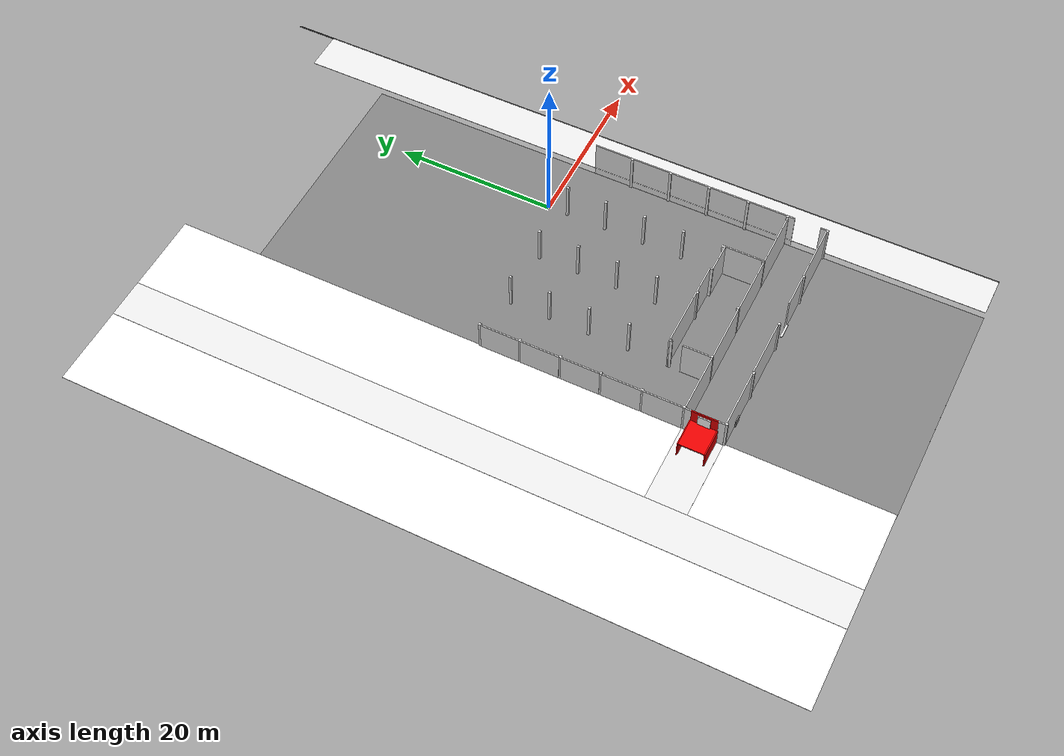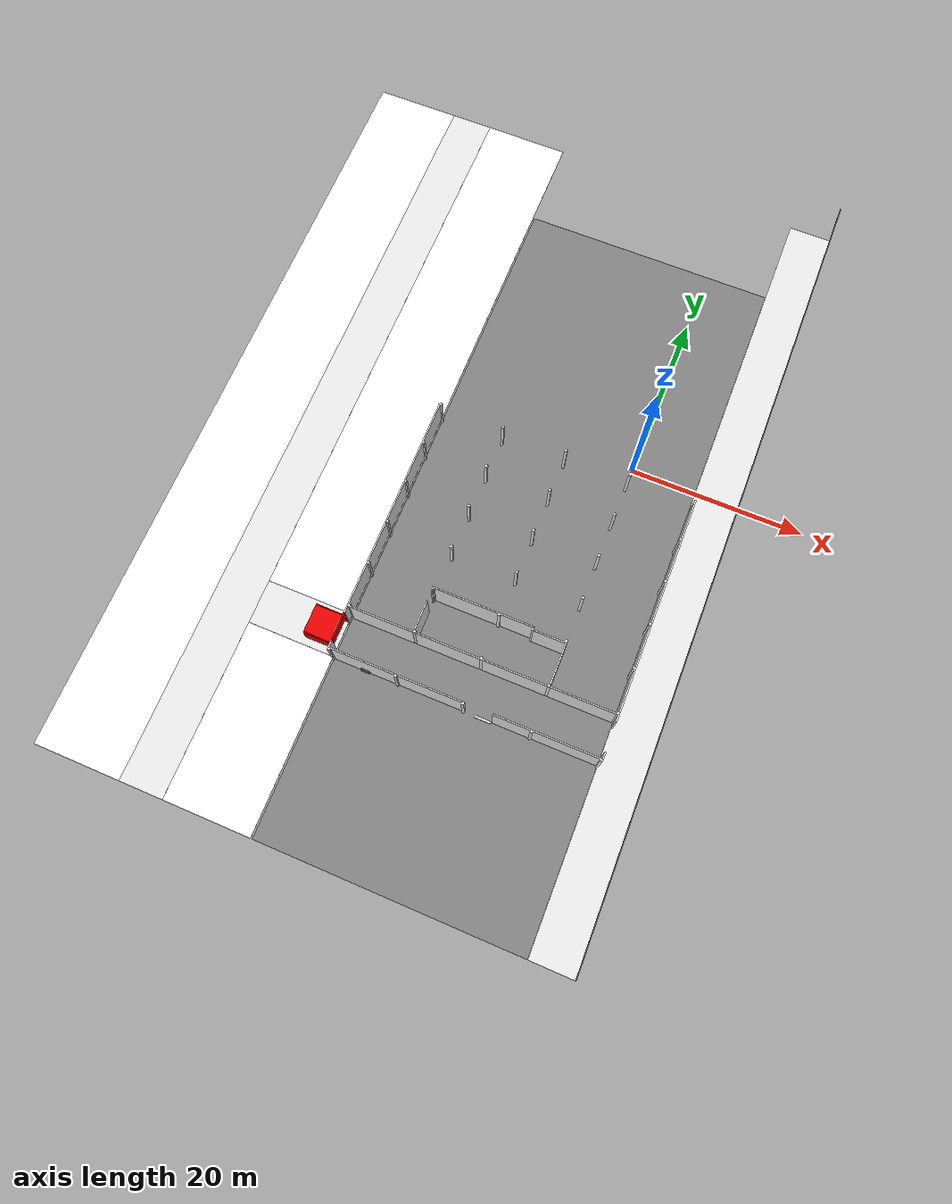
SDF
<sdf version="1.7">
 <model name="TYwalls">
  <pose>0 0 2.5 0 0 0</pose>
  <link name="Wall_RE1">
   <pose>-18.75 -27.6 0 0 0 0</pose>
   <collision name="Wall_RE1_Collision"><geometry><box><size>7.2 0.15 5</size></box></geometry></collision>
   <visual name="Wall_RE1_Visual">
    <geometry><box><size>7.2 0.15 5</size></box></geometry>
    <material>
     <ambient>0.9 0.9 0.9 1</ambient>
     <diffuse>0.9 0.9 0.9 1</diffuse>
     <specular>0.9 0.9 0.9 1</specular>
    </material>
    <meta><layer>0</layer></meta>
   </visual>
  </link>
  <link name="Wall_RE2">
   <pose>-11.25 -27.6 0 0 0 0</pose>
   <collision name="Wall_RE2_Collision"><geometry><box><size>7.2 0.15 5</size></box></geometry></collision>
   <visual name="Wall_RE2_Visual">
    <geometry><box><size>7.2 0.15 5</size></box></geometry>
    <material>
     <ambient>0.9 0.9 0.9 1</ambient>
     <diffuse>0.9 0.9 0.9 1</diffuse>
     <specular>0.9 0.9 0.9 1</specular>
    </material>
    <meta><layer>0</layer></meta>
   </visual>
  </link>
  <link name="Wall_RE3">
   <pose>-3.75 -27.6 0 0 0 0</pose>
   <collision name="Wall_RE3_Collision"><geometry><box><size>7.2 0.15 5</size></box></geometry></collision>
   <visual name="Wall_RE3_Visual">
    <geometry><box><size>7.2 0.15 5</size></box></geometry>
    <material>
     <ambient>0.9 0.9 0.9 1</ambient>
     <diffuse>0.9 0.9 0.9 1</diffuse>
     <specular>0.9 0.9 0.9 1</specular>
    </material>
    <meta><layer>0</layer></meta>
   </visual>
  </link>
  <link name="Wall_RE4">
   <pose>3.75 -27.6 0 0 0 0</pose>
   <collision name="Wall_RE4_Collision"><geometry><box><size>7.2 0.15 5</size></box></geometry></collision>
   <visual name="Wall_RE4_Visual">
    <geometry><box><size>7.2 0.15 5</size></box></geometry>
    <material>
     <ambient>0.9 0.9 0.9 1</ambient>
     <diffuse>0.9 0.9 0.9 1</diffuse>
     <specular>0.9 0.9 0.9 1</specular>
    </material>
    <meta><layer>0</layer></meta>
   </visual>
  </link>
  <link name="Wall_S7">
   <pose>7.6 -5.0 0 0 0 1.5707</pose>
   <collision name="Wall_S7_Collision"><geometry><box><size>4.8 0.15 5</size></box></geometry></collision>
   <visual name="Wall_S7_Visual">
    <geometry><box><size>4.8 0.15 5</size></box></geometry>
    <material>
     <ambient>0.9 0.9 0.9 1</ambient>
     <diffuse>0.9 0.9 0.9 1</diffuse>
     <specular>0.9 0.9 0.9 1</specular>
    </material>
    <meta><layer>0</layer></meta>
   </visual>
  </link>
  <link name="Wall_S8">
   <pose>7.6 -10.0 0 0 0 1.5707</pose>
   <collision name="Wall_S8_Collision"><geometry><box><size>4.8 0.15 5</size></box></geometry></collision>
   <visual name="Wall_S8_Visual">
    <geometry><box><size>4.8 0.15 5</size></box></geometry>
    <material>
     <ambient>0.9 0.9 0.9 1</ambient>
     <diffuse>0.9 0.9 0.9 1</diffuse>
     <specular>0.9 0.9 0.9 1</specular>
    </material>
    <meta><layer>0</layer></meta>
   </visual>
  </link>
  <link name="Wall_S9">
   <pose>7.6 -15.0 0 0 0 1.5707</pose>
   <collision name="Wall_S9_Collision"><geometry><box><size>4.8 0.15 5</size></box></geometry></collision>
   <visual name="Wall_S9_Visual">
    <geometry><box><size>4.8 0.15 5</size></box></geometry>
    <material>
     <ambient>0.9 0.9 0.9 1</ambient>
     <diffuse>0.9 0.9 0.9 1</diffuse>
     <specular>0.9 0.9 0.9 1</specular>
    </material>
    <meta><layer>0</layer></meta>
   </visual>
  </link>
  <link name="Wall_S10">
   <pose>7.6 -20.0 0 0 0 1.5707</pose>
   <collision name="Wall_S10_Collision"><geometry><box><size>4.8 0.15 5</size></box></geometry></collision>
   <visual name="Wall_S10_Visual">
    <geometry><box><size>4.8 0.15 5</size></box></geometry>
    <material>
     <ambient>0.9 0.9 0.9 1</ambient>
     <diffuse>0.9 0.9 0.9 1</diffuse>
     <specular>0.9 0.9 0.9 1</specular>
    </material>
    <meta><layer>0</layer></meta>
   </visual>
  </link>
  <link name="Wall_S11">
   <pose>7.6 -25.0 0 0 0 1.5707</pose>
   <collision name="Wall_S11_Collision"><geometry><box><size>4.8 0.15 5</size></box></geometry></collision>
   <visual name="Wall_S11_Visual">
    <geometry><box><size>4.8 0.15 5</size></box></geometry>
    <material>
     <ambient>0.9 0.9 0.9 1</ambient>
     <diffuse>0.9 0.9 0.9 1</diffuse>
     <specular>0.9 0.9 0.9 1</specular>
    </material>
    <meta><layer>0</layer></meta>
   </visual>
  </link>
  <link name="Wall_S12a">
   <pose>7.6 -28.0 0 0 0 1.5707</pose>
   <collision name="Wall_S12a_Collision"><geometry><box><size>0.8 0.15 5</size></box></geometry></collision>
   <visual name="Wall_S12a_Visual">
    <geometry><box><size>0.8 0.15 5</size></box></geometry>
    <material>
     <ambient>0.9 0.9 0.9 1</ambient>
     <diffuse>0.9 0.9 0.9 1</diffuse>
     <specular>0.9 0.9 0.9 1</specular>
    </material>
    <meta><layer>0</layer></meta>
   </visual>
  </link>
  <link name="Wall_S12b">
   <pose>7.6 -32.0 0 0 0 1.5707</pose>
   <collision name="Wall_S12b_Collision"><geometry><box><size>0.8 0.15 5</size></box></geometry></collision>
   <visual name="Wall_S12b_Visual">
    <geometry><box><size>0.8 0.15 5</size></box></geometry>
    <material>
     <ambient>0.9 0.9 0.9 1</ambient>
     <diffuse>0.9 0.9 0.9 1</diffuse>
     <specular>0.9 0.9 0.9 1</specular>
    </material>
    <meta><layer>0</layer></meta>
   </visual>
  </link>
  <link name="Wall_N7">
   <pose>-22.6 -5.0 0 0 0 1.5707</pose>
   <collision name="Wall_N7_Collision"><geometry><box><size>4.8 0.15 5</size></box></geometry></collision>
   <visual name="Wall_N7_Visual">
    <geometry><box><size>4.8 0.15 5</size></box></geometry>
    <material>
     <ambient>0.9 0.9 0.9 1</ambient>
     <diffuse>0.9 0.9 0.9 1</diffuse>
     <specular>0.9 0.9 0.9 1</specular>
    </material>
    <meta><layer>0</layer></meta>
   </visual>
  </link>
  <link name="Wall_N8">
   <pose>-22.6 -10.0 0 0 0 1.5707</pose>
   <collision name="Wall_N8_Collision"><geometry><box><size>4.8 0.15 5</size></box></geometry></collision>
   <visual name="Wall_N8_Visual">
    <geometry><box><size>4.8 0.15 5</size></box></geometry>
    <material>
     <ambient>0.9 0.9 0.9 1</ambient>
     <diffuse>0.9 0.9 0.9 1</diffuse>
     <specular>0.9 0.9 0.9 1</specular>
    </material>
    <meta><layer>0</layer></meta>
   </visual>
  </link>
  <link name="Wall_N9">
   <pose>-22.6 -15.0 0 0 0 1.5707</pose>
   <collision name="Wall_N9_Collision"><geometry><box><size>4.8 0.15 5</size></box></geometry></collision>
   <visual name="Wall_N9_Visual">
    <geometry><box><size>4.8 0.15 5</size></box></geometry>
    <material>
     <ambient>0.9 0.9 0.9 1</ambient>
     <diffuse>0.9 0.9 0.9 1</diffuse>
     <specular>0.9 0.9 0.9 1</specular>
    </material>
    <meta><layer>0</layer></meta>
   </visual>
  </link>
  <link name="Wall_N10">
   <pose>-22.6 -20.0 0 0 0 1.5707</pose>
   <collision name="Wall_N10_Collision"><geometry><box><size>4.8 0.15 5</size></box></geometry></collision>
   <visual name="Wall_N10_Visual">
    <geometry><box><size>4.8 0.15 5</size></box></geometry>
    <material>
     <ambient>0.9 0.9 0.9 1</ambient>
     <diffuse>0.9 0.9 0.9 1</diffuse>
     <specular>0.9 0.9 0.9 1</specular>
    </material>
    <meta><layer>0</layer></meta>
   </visual>
  </link>
  <link name="Wall_N11">
   <pose>-22.6 -25.0 0 0 0 1.5707</pose>
   <collision name="Wall_N11_Collision"><geometry><box><size>4.8 0.15 5</size></box></geometry></collision>
   <visual name="Wall_N11_Visual">
    <geometry><box><size>4.8 0.15 5</size></box></geometry>
    <material>
     <ambient>0.9 0.9 0.9 1</ambient>
     <diffuse>0.9 0.9 0.9 1</diffuse>
     <specular>0.9 0.9 0.9 1</specular>
    </material>
    <meta><layer>0</layer></meta>
   </visual>
  </link>
  <link name="Wall_N12a">
   <pose>-22.6 -28.0 0 0 0 1.5707</pose>
   <collision name="Wall_N12a_Collision"><geometry><box><size>0.8 0.15 5</size></box></geometry></collision>
   <visual name="Wall_N12_Visual">
    <geometry><box><size>0.8 0.15 5</size></box></geometry>
    <material>
     <ambient>0.9 0.9 0.9 1</ambient>
     <diffuse>0.9 0.9 0.9 1</diffuse>
     <specular>0.9 0.9 0.9 1</specular>
    </material>
    <meta><layer>0</layer></meta>
   </visual>
  </link>
  <link name="Wall_N12b">
   <pose>-22.6 -32.0 0 0 0 1.5707</pose>
   <collision name="Wall_N12b_Collision"><geometry><box><size>0.8 0.15 5</size></box></geometry></collision>
   <visual name="Wall_N12_Visual">
    <geometry><box><size>0.8 0.15 5</size></box></geometry>
    <material>
     <ambient>0.9 0.9 0.9 1</ambient>
     <diffuse>0.9 0.9 0.9 1</diffuse>
     <specular>0.9 0.9 0.9 1</specular>
    </material>
    <meta><layer>0</layer></meta>
   </visual>
  </link>
  <link name="Wall_RW1">
   <pose>-18.75 -32.4 0 0 0 0</pose>
   <collision name="Wall_RW1_Collision"><geometry><box><size>7.2 0.15 5</size></box></geometry></collision>
   <visual name="Wall_RW1_Visual">
    <geometry><box><size>7.2 0.15 5</size></box></geometry>
    <material>
     <ambient>0.9 0.9 0.9 1</ambient>
     <diffuse>0.9 0.9 0.9 1</diffuse>
     <specular>0.9 0.9 0.9 1</specular>
    </material>
    <meta><layer>0</layer></meta>
   </visual>
  </link>
  <link name="Wall_RW2">
   <pose>-11.25 -32.4 0 0 0 0</pose>
   <collision name="Wall_RW2_Collision"><geometry><box><size>7.2 0.15 5</size></box></geometry></collision>
   <visual name="Wall_RW2_Visual">
    <geometry><box><size>7.2 0.15 5</size></box></geometry>
    <material>
     <ambient>0.9 0.9 0.9 1</ambient>
     <diffuse>0.9 0.9 0.9 1</diffuse>
     <specular>0.9 0.9 0.9 1</specular>
    </material>
    <meta><layer>0</layer></meta>
   </visual>
  </link>
  <link name="Wall_RW3">
   <pose>-2.175 -32.4 0 0 0 0</pose>
   <collision name="Wall_RW3_Collision"><geometry><box><size>4.2 0.15 5</size></box></geometry></collision>
   <visual name="Wall_W3_Visual">
    <geometry><box><size>4.2 0.15 5</size></box></geometry>
    <material>
     <ambient>0.9 0.9 0.9 1</ambient>
     <diffuse>0.9 0.9 0.9 1</diffuse>
     <specular>0.9 0.9 0.9 1</specular>
    </material>
    <meta><layer>0</layer></meta>
   </visual>
  </link>
  <link name="Wall_RW4">
   <pose>3.75 -32.4 0 0 0 0</pose>
   <collision name="Wall_RW4_Collision"><geometry><box><size>7.2 0.15 5</size></box></geometry></collision>
   <visual name="Wall_RW4_Visual">
    <geometry><box><size>7.2 0.15 5</size></box></geometry>
    <material>
     <ambient>0.9 0.9 0.9 1</ambient>
     <diffuse>0.9 0.9 0.9 1</diffuse>
     <specular>0.9 0.9 0.9 1</specular>
    </material>
    <meta><layer>0</layer></meta>
   </visual>
  </link>
  <link name="Wall_Entrance_1">
   <pose>-24.35 -28.4 -0.5 0 0 0</pose>
   <collision name="Wall_Entrance_1_Collision">
    <geometry><box><size>3.5 0.15 2.5</size></box></geometry>
   </collision>
   <visual name="Wall_Entrance_1_Visual">
    <geometry><box><size>3.5 0.15 2.5</size></box></geometry>
    <material>
     <ambient>0.9 0.0 0.0 1</ambient>
     <diffuse>0.9 0.0 0.0 1</diffuse>
     <specular>0.9 0.1 0.1 1</specular>
    </material>
    <meta><layer>0</layer></meta>
   </visual>
  </link>
  <link name="Wall_Entrance_2">
   <pose>-24.35 -31.6 -0.5 0 0 0</pose>
   <collision name="Wall_Entrance_2_Collision">
    <geometry><box><size>3.5 0.15 2.5</size></box></geometry>
   </collision>
   <visual name="Wall_Entrance_2_Visual">
    <geometry><box><size>3.5 0.15 2.5</size></box></geometry>
    <material>
     <ambient>0.9 0.0 0.0 1</ambient>
     <diffuse>0.9 0.0 0.0 1</diffuse>
     <specular>0.9 0.1 0.1 1</specular>
    </material>
    <meta><layer>0</layer></meta>
   </visual>
  </link>
  <link name="Wall_Entrance_3">
   <pose>-24.35 -30.0 0.675 0 0 0</pose>
   <collision name="Wall_Entrance_3_Collision">
    <geometry><box><size>3.5 3.15 0.15</size></box></geometry>
   </collision>
   <visual name="Wall_Entrance_3_Visual">
    <geometry><box><size>3.5 3.15 0.15</size></box></geometry>
    <material>
     <ambient>0.9 0.0 0.0 1</ambient>
     <diffuse>0.9 0.0 0.0 1</diffuse>
     <specular>0.9 0.1 0.1 1</specular>
    </material>
    <meta><layer>0</layer></meta>
   </visual>
  </link>
  <link name="Wall_Entrance_4">
   <pose>-22.6 -30.0 1.6 0 0 1.57</pose>
   <collision name="Wall_Entrance_4_Collision">
    <geometry><box><size>3.2 0.15 1.8</size></box></geometry>
   </collision>
   <visual name="Wall_Entrance_4_Visual">
    <geometry><box><size>3.2 0.15 1.8</size></box></geometry>
    <material>
     <ambient>0.9 0.0 0.0 1</ambient>
     <diffuse>0.9 0.0 0.0 1</diffuse>
     <specular>0.9 0.1 0.1 1</specular>
    </material>
    <meta><layer>0</layer></meta>
   </visual>
  </link>
  <link name="Wall_Entrance_5">
   <pose>-22.75 -30.0 1.4 0 0 1.57</pose>
   <collision name="Wall_Entrance_5_Collision">
    <geometry><box><size>1.5 0.15 1.5</size></box></geometry>
   </collision>
   <visual name="Wall_Entrance_5_Visual">
    <geometry><box><size>1.5 0.15 1.5</size></box></geometry>
    <material>
     <diffuse>1.0 1.0 1.0</diffuse>
     <specular>1.0 1.0 1.0</specular>
     <pbr>
      <metal>
       <albedo_map>model://avular_logo/materials/textures/avular_logo.png</albedo_map>
       <normal_map>model://avular_logo/materials/textures/avular_logo.png</normal_map>
      </metal>
     </pbr>
    </material>
    <meta><layer>0</layer></meta>
   </visual>
  </link>
  <link name="Wall_I01">
   <pose>-15.075 -25.7 0 0 0 1.5707</pose>
   <collision name="Wall_I01_Collision"><geometry><box><size>3.4 0.15 5</size></box></geometry></collision>
   <visual name="Wall_I01_Visual">
    <geometry><box><size>3.4 0.15 5</size></box></geometry>
    <material>
     <ambient>0.9 0.9 0.9 1</ambient>
     <diffuse>0.9 0.9 0.9 1</diffuse>
     <specular>0.9 0.9 0.9 1</specular>
    </material>
    <meta><layer>0</layer></meta>
   </visual>
  </link>
  <link name="Wall_I02">
   <pose>-15.075 -22.6 0 0 0 1.5707</pose>
   <collision name="Wall_I02_Collision"><geometry><box><size>0.4 0.15 5</size></box></geometry></collision>
   <visual name="Wall_I02_Visual">
    <geometry><box><size>0.4 0.15 5</size></box></geometry>
    <material>
     <ambient>0.9 0.9 0.9 1</ambient>
     <diffuse>0.9 0.9 0.9 1</diffuse>
     <specular>0.9 0.9 0.9 1</specular>
    </material>
    <meta><layer>0</layer></meta>
   </visual>
  </link>
  <link name="Wall_I03">
   <pose>-9.375 -22.4 0 0 0 0</pose>
   <collision name="Wall_I03_Collision"><geometry><box><size>11.55 0.15 5</size></box></geometry></collision>
   <visual name="Wall_I03_Visual">
    <geometry><box><size>11.55 0.15 5</size></box></geometry>
    <material>
     <ambient>0.9 0.9 0.9 1</ambient>
     <diffuse>0.9 0.9 0.9 1</diffuse>
     <specular>0.9 0.9 0.9 1</specular>
    </material>
    <meta><layer>0</layer></meta>
   </visual>
  </link>
  <link name="Wall_I04">
   <pose>-1.73 -22.72 0 0 0 0</pose>
   <collision name="Wall_I04_Collision"><geometry><box><size>3.75 0.15 5</size></box></geometry></collision>
   <visual name="Wall_I04_Visual">
    <geometry><box><size>3.75 0.15 5</size></box></geometry>
    <material>
     <ambient>0.9 0.9 0.9 1</ambient>
     <diffuse>0.9 0.9 0.9 1</diffuse>
     <specular>0.9 0.9 0.9 1</specular>
    </material>
    <meta><layer>0</layer></meta>
   </visual>
  </link>
  <link name="Wall_I05">
   <pose>0.065 -25.15 0 0 0 1.5707</pose>
   <collision name="Wall_I05_Collision"><geometry><box><size>4.8 0.15 5</size></box></geometry></collision>
   <visual name="Wall_I05_Visual">
    <geometry><box><size>4.8 0.15 5</size></box></geometry>
    <material>
     <ambient>0.9 0.9 0.9 1</ambient>
     <diffuse>0.9 0.9 0.9 1</diffuse>
     <specular>0.9 0.9 0.9 1</specular>
    </material>
    <meta><layer>0</layer></meta>
   </visual>
  </link>
  <link name="Wall_I06">
   <pose>-3.68 -22.635 0 0 0 1.5707</pose>
   <collision name="Wall_I06_Collision"><geometry><box><size>0.33 0.16 5</size></box></geometry></collision>
   <visual name="Wall_I06_Visual">
    <geometry><box><size>0.33 0.16 5</size></box></geometry>
    <material>
     <ambient>0.9 0.9 0.9 1</ambient>
     <diffuse>0.9 0.9 0.9 1</diffuse>
     <specular>0.9 0.9 0.9 1</specular>
    </material>
    <meta><layer>0</layer></meta>
   </visual>
  </link>
  <link name="column_37">
   <pose>-22.5 -2.5 0 0 0 0</pose>
   <visual name="column_37_visual">
    <geometry><box><size>0.3 0.3 5</size></box></geometry>
    <material>
     <ambient>0.9 0.9 0.9 1</ambient>
     <diffuse>0.9 0.9 0.9 1</diffuse>
     <specular>0.9 0.9 0.9 1</specular>
    </material>
    <meta><layer>0</layer></meta>
   </visual>
   <collision name="collision"><geometry><box><size>0.3 0.3 5</size></box></geometry></collision>
  </link>
  <link name="column_38">
   <pose>-15.0 -2.5 0 0 0 0</pose>
   <visual name="column_38_visual">
    <geometry><box><size>0.3 0.3 5</size></box></geometry>
    <material>
     <ambient>0.9 0.9 0.9 1</ambient>
     <diffuse>0.9 0.9 0.9 1</diffuse>
     <specular>0.9 0.9 0.9 1</specular>
    </material>
    <meta><layer>0</layer></meta>
   </visual>
   <collision name="collision"><geometry><box><size>0.3 0.3 5</size></box></geometry></collision>
  </link>
  <link name="column_39">
   <pose>-7.5 -2.5 0 0 0 0</pose>
   <visual name="column_39_visual">
    <geometry><box><size>0.3 0.3 5</size></box></geometry>
    <material>
     <ambient>0.9 0.9 0.9 1</ambient>
     <diffuse>0.9 0.9 0.9 1</diffuse>
     <specular>0.9 0.9 0.9 1</specular>
    </material>
    <meta><layer>0</layer></meta>
   </visual>
   <collision name="collision"><geometry><box><size>0.3 0.3 5</size></box></geometry></collision>
  </link>
  <link name="column_40">
   <pose>0 -2.5 0 0 0 0</pose>
   <visual name="column_40_visual">
    <geometry><box><size>0.3 0.3 5</size></box></geometry>
    <material>
     <ambient>0.9 0.9 0.9 1</ambient>
     <diffuse>0.9 0.9 0.9 1</diffuse>
     <specular>0.9 0.9 0.9 1</specular>
    </material>
    <meta><layer>0</layer></meta>
   </visual>
   <collision name="collision"><geometry><box><size>0.3 0.3 5</size></box></geometry></collision>
  </link>
  <link name="column_49">
   <pose>-22.5 -7.5 0 0 0 0</pose>
   <visual name="column_49_visual">
    <geometry><box><size>0.3 0.3 5</size></box></geometry>
    <material>
     <ambient>0.9 0.9 0.9 1</ambient>
     <diffuse>0.9 0.9 0.9 1</diffuse>
     <specular>0.9 0.9 0.9 1</specular>
    </material>
    <meta><layer>0</layer></meta>
   </visual>
   <collision name="collision"><geometry><box><size>0.3 0.3 5</size></box></geometry></collision>
  </link>
  <link name="column_50">
   <pose>-15.0 -7.5 0 0 0 0</pose>
   <visual name="column_50_visual">
    <geometry><box><size>0.3 0.3 5</size></box></geometry>
    <material>
     <ambient>0.9 0.9 0.9 1</ambient>
     <diffuse>0.9 0.9 0.9 1</diffuse>
     <specular>0.9 0.9 0.9 1</specular>
    </material>
    <meta><layer>0</layer></meta>
   </visual>
   <collision name="collision"><geometry><box><size>0.3 0.3 5</size></box></geometry></collision>
  </link>
  <link name="column_51">
   <pose>-7.5 -7.5 0 0 0 0</pose>
   <visual name="column_51_visual">
    <geometry><box><size>0.3 0.3 5</size></box></geometry>
    <material>
     <ambient>0.9 0.9 0.9 1</ambient>
     <diffuse>0.9 0.9 0.9 1</diffuse>
     <specular>0.9 0.9 0.9 1</specular>
    </material>
    <meta><layer>0</layer></meta>
   </visual>
   <collision name="collision"><geometry><box><size>0.3 0.3 5</size></box></geometry></collision>
  </link>
  <link name="column_52">
   <pose>0 -7.5 0 0 0 0</pose>
   <visual name="column_52_visual">
    <geometry><box><size>0.3 0.3 5</size></box></geometry>
    <material>
     <ambient>0.9 0.9 0.9 1</ambient>
     <diffuse>0.9 0.9 0.9 1</diffuse>
     <specular>0.9 0.9 0.9 1</specular>
    </material>
    <meta><layer>0</layer></meta>
   </visual>
   <collision name="collision"><geometry><box><size>0.3 0.3 5</size></box></geometry></collision>
  </link>
  <link name="column_53">
   <pose>7.5 -7.5 0 0 -0 0</pose>
   <visual name="column_53_visual">
    <geometry><box><size>0.3 0.3 5</size></box></geometry>
    <material>
     <ambient>0.9 0.9 0.9 1</ambient>
     <diffuse>0.9 0.9 0.9 1</diffuse>
     <specular>0.9 0.9 0.9 1</specular>
    </material>
    <meta><layer>0</layer></meta>
   </visual>
   <collision name="collision"><geometry><box><size>0.3 0.3 5</size></box></geometry></collision>
  </link>
  <link name="column_55">
   <pose>-22.5 -12.5 0 0 0 0</pose>
   <visual name="column_55_visual">
    <geometry><box><size>0.3 0.3 5</size></box></geometry>
    <material>
     <ambient>0.9 0.9 0.9 1</ambient>
     <diffuse>0.9 0.9 0.9 1</diffuse>
     <specular>0.9 0.9 0.9 1</specular>
    </material>
    <meta><layer>0</layer></meta>
   </visual>
   <collision name="collision"><geometry><box><size>0.3 0.3 5</size></box></geometry></collision>
  </link>
  <link name="column_56">
   <pose>-15.0 -12.5 0 0 0 0</pose>
   <visual name="column_56_visual">
    <geometry><box><size>0.3 0.3 5</size></box></geometry>
    <material>
     <ambient>0.9 0.9 0.9 1</ambient>
     <diffuse>0.9 0.9 0.9 1</diffuse>
     <specular>0.9 0.9 0.9 1</specular>
    </material>
    <meta><layer>0</layer></meta>
   </visual>
   <collision name="collision"><geometry><box><size>0.3 0.3 5</size></box></geometry></collision>
  </link>
  <link name="column_57">
   <pose>-7.5 -12.5 0 0 0 0</pose>
   <visual name="column_57_visual">
    <geometry><box><size>0.3 0.3 5</size></box></geometry>
    <material>
     <ambient>0.9 0.9 0.9 1</ambient>
     <diffuse>0.9 0.9 0.9 1</diffuse>
     <specular>0.9 0.9 0.9 1</specular>
    </material>
    <meta><layer>0</layer></meta>
   </visual>
   <collision name="collision"><geometry><box><size>0.3 0.3 5</size></box></geometry></collision>
  </link>
  <link name="column_58">
   <pose>0 -12.5 0 0 0 0</pose>
   <visual name="column_58_visual">
    <geometry><box><size>0.3 0.3 5</size></box></geometry>
    <material>
     <ambient>0.9 0.9 0.9 1</ambient>
     <diffuse>0.9 0.9 0.9 1</diffuse>
     <specular>0.9 0.9 0.9 1</specular>
    </material>
    <meta><layer>0</layer></meta>
   </visual>
   <collision name="collision"><geometry><box><size>0.3 0.3 5</size></box></geometry></collision>
  </link>
  <link name="column_59">
   <pose>7.5 -12.5 0 0 -0 0</pose>
   <visual name="column_59_visual">
    <geometry><box><size>0.3 0.3 5</size></box></geometry>
    <material>
     <ambient>0.9 0.9 0.9 1</ambient>
     <diffuse>0.9 0.9 0.9 1</diffuse>
     <specular>0.9 0.9 0.9 1</specular>
    </material>
    <meta><layer>0</layer></meta>
   </visual>
   <collision name="collision"><geometry><box><size>0.3 0.3 5</size></box></geometry></collision>
  </link>
  <link name="column_61">
   <pose>-22.5 -17.5 0 0 0 0</pose>
   <visual name="column_61_visual">
    <geometry><box><size>0.3 0.3 5</size></box></geometry>
    <material>
     <ambient>0.9 0.9 0.9 1</ambient>
     <diffuse>0.9 0.9 0.9 1</diffuse>
     <specular>0.9 0.9 0.9 1</specular>
    </material>
    <meta><layer>0</layer></meta>
   </visual>
   <collision name="collision"><geometry><box><size>0.3 0.3 5</size></box></geometry></collision>
  </link>
  <link name="column_62">
   <pose>-15.0 -17.5 0 0 0 0</pose>
   <visual name="column_62_visual">
    <geometry><box><size>0.3 0.3 5</size></box></geometry>
    <material>
     <ambient>0.9 0.9 0.9 1</ambient>
     <diffuse>0.9 0.9 0.9 1</diffuse>
     <specular>0.9 0.9 0.9 1</specular>
    </material>
    <meta><layer>0</layer></meta>
   </visual>
   <collision name="collision"><geometry><box><size>0.3 0.3 5</size></box></geometry></collision>
  </link>
  <link name="column_63">
   <pose>-7.5 -17.5 0 0 0 0</pose>
   <visual name="column_63_visual">
    <geometry><box><size>0.3 0.3 5</size></box></geometry>
    <material>
     <ambient>0.9 0.9 0.9 1</ambient>
     <diffuse>0.9 0.9 0.9 1</diffuse>
     <specular>0.9 0.9 0.9 1</specular>
    </material>
    <meta><layer>0</layer></meta>
   </visual>
   <collision name="collision"><geometry><box><size>0.3 0.3 5</size></box></geometry></collision>
  </link>
  <link name="column_64">
   <pose>0 -17.5 0 0 0 0</pose>
   <visual name="column_64_visual">
    <geometry><box><size>0.3 0.3 5</size></box></geometry>
    <material>
     <ambient>0.9 0.9 0.9 1</ambient>
     <diffuse>0.9 0.9 0.9 1</diffuse>
     <specular>0.9 0.9 0.9 1</specular>
    </material>
    <meta><layer>0</layer></meta>
   </visual>
   <collision name="collision"><geometry><box><size>0.3 0.3 5</size></box></geometry></collision>
  </link>
  <link name="column_65">
   <pose>7.5 -17.5 0 0 -0 0</pose>
   <visual name="column_65_visual">
    <geometry><box><size>0.3 0.3 5</size></box></geometry>
    <material>
     <ambient>0.9 0.9 0.9 1</ambient>
     <diffuse>0.9 0.9 0.9 1</diffuse>
     <specular>0.9 0.9 0.9 1</specular>
    </material>
    <meta><layer>0</layer></meta>
   </visual>
   <collision name="collision"><geometry><box><size>0.3 0.3 5</size></box></geometry></collision>
  </link>
  <link name="column_67">
   <pose>-22.5 -22.5 0 0 0 0</pose>
   <visual name="column_67_visual">
    <geometry><box><size>0.3 0.3 5</size></box></geometry>
    <material>
     <ambient>0.9 0.9 0.9 1</ambient>
     <diffuse>0.9 0.9 0.9 1</diffuse>
     <specular>0.9 0.9 0.9 1</specular>
    </material>
    <meta><layer>0</layer></meta>
   </visual>
   <collision name="collision"><geometry><box><size>0.3 0.3 5</size></box></geometry></collision>
  </link>
  <link name="column_68">
   <pose>-15.0 -22.5 0 0 0 0</pose>
   <visual name="column_68_visual">
    <geometry><box><size>0.3 0.3 5</size></box></geometry>
    <material>
     <ambient>0.9 0.9 0.9 1</ambient>
     <diffuse>0.9 0.9 0.9 1</diffuse>
     <specular>0.9 0.9 0.9 1</specular>
    </material>
    <meta><layer>0</layer></meta>
   </visual>
   <collision name="collision"><geometry><box><size>0.3 0.3 5</size></box></geometry></collision>
  </link>
  <link name="column_69">
   <pose>-7.5 -22.5 0 0 0 0</pose>
   <visual name="column_69_visual">
    <geometry><box><size>0.3 0.3 5</size></box></geometry>
    <material>
     <ambient>0.9 0.9 0.9 1</ambient>
     <diffuse>0.9 0.9 0.9 1</diffuse>
     <specular>0.9 0.9 0.9 1</specular>
    </material>
    <meta><layer>0</layer></meta>
   </visual>
   <collision name="collision"><geometry><box><size>0.3 0.3 5</size></box></geometry></collision>
  </link>
  <link name="column_70">
   <pose>0 -22.5 0 0 0 0</pose>
   <visual name="column_70_visual">
    <geometry><box><size>0.3 0.3 5</size></box></geometry>
    <material>
     <ambient>0.9 0.9 0.9 1</ambient>
     <diffuse>0.9 0.9 0.9 1</diffuse>
     <specular>0.9 0.9 0.9 1</specular>
    </material>
    <meta><layer>0</layer></meta>
   </visual>
   <collision name="collision"><geometry><box><size>0.3 0.3 5</size></box></geometry></collision>
  </link>
  <link name="column_71">
   <pose>7.5 -22.5 0 0 -0 0</pose>
   <visual name="column_71_visual">
    <geometry><box><size>0.3 0.3 5</size></box></geometry>
    <material>
     <ambient>0.9 0.9 0.9 1</ambient>
     <diffuse>0.9 0.9 0.9 1</diffuse>
     <specular>0.9 0.9 0.9 1</specular>
    </material>
    <meta><layer>0</layer></meta>
   </visual>
   <collision name="collision"><geometry><box><size>0.3 0.3 5</size></box></geometry></collision>
  </link>
  <link name="column_72">
   <pose>-22.5 -27.5 0 0 0 0</pose>
   <visual name="column_72_visual">
    <geometry><box><size>0.3 0.3 5</size></box></geometry>
    <material>
     <ambient>0.9 0.9 0.9 1</ambient>
     <diffuse>0.9 0.9 0.9 1</diffuse>
     <specular>0.9 0.9 0.9 1</specular>
    </material>
    <meta><layer>0</layer></meta>
   </visual>
   <collision name="collision"><geometry><box><size>0.3 0.3 5</size></box></geometry></collision>
  </link>
  <link name="column_73">
   <pose>-15.0 -27.5 0 0 0 0</pose>
   <visual name="column_73_visual">
    <geometry><box><size>0.3 0.3 5</size></box></geometry>
    <material>
     <ambient>0.9 0.9 0.9 1</ambient>
     <diffuse>0.9 0.9 0.9 1</diffuse>
     <specular>0.9 0.9 0.9 1</specular>
    </material>
    <meta><layer>0</layer></meta>
   </visual>
   <collision name="collision"><geometry><box><size>0.3 0.3 5</size></box></geometry></collision>
  </link>
  <link name="column_74">
   <pose>-7.5 -27.5 0 0 0 0</pose>
   <visual name="column_74_visual">
    <geometry><box><size>0.3 0.3 5</size></box></geometry>
    <material>
     <ambient>0.9 0.9 0.9 1</ambient>
     <diffuse>0.9 0.9 0.9 1</diffuse>
     <specular>0.9 0.9 0.9 1</specular>
    </material>
    <meta><layer>0</layer></meta>
   </visual>
   <collision name="collision"><geometry><box><size>0.3 0.3 5</size></box></geometry></collision>
  </link>
  <link name="column_75">
   <pose>0 -27.5 0 0 0 0</pose>
   <visual name="column_75_visual">
    <geometry><box><size>0.3 0.3 5</size></box></geometry>
    <material>
     <ambient>0.9 0.9 0.9 1</ambient>
     <diffuse>0.9 0.9 0.9 1</diffuse>
     <specular>0.9 0.9 0.9 1</specular>
    </material>
    <meta><layer>0</layer></meta>
   </visual>
   <collision name="collision"><geometry><box><size>0.3 0.3 5</size></box></geometry></collision>
  </link>
  <link name="column_76">
   <pose>7.5 -27.5 0 0 -0 0</pose>
   <visual name="column_76_visual">
    <geometry><box><size>0.3 0.3 5</size></box></geometry>
    <material>
     <ambient>0.9 0.9 0.9 1</ambient>
     <diffuse>0.9 0.9 0.9 1</diffuse>
     <specular>0.9 0.9 0.9 1</specular>
    </material>
    <meta><layer>0</layer></meta>
   </visual>
   <collision name="collision"><geometry><box><size>0.3 0.3 5</size></box></geometry></collision>
  </link>
  <link name="column_77">
   <pose>-22.5 -32.5 0 0 0 0</pose>
   <visual name="column_77_visual">
    <geometry><box><size>0.3 0.3 5</size></box></geometry>
    <material>
     <ambient>0.9 0.9 0.9 1</ambient>
     <diffuse>0.9 0.9 0.9 1</diffuse>
     <specular>0.9 0.9 0.9 1</specular>
    </material>
    <meta><layer>0</layer></meta>
   </visual>
   <collision name="collision"><geometry><box><size>0.3 0.3 5</size></box></geometry></collision>
  </link>
  <link name="column_78">
   <pose>-15.0 -32.5 0 0 0 0</pose>
   <visual name="column_78_visual">
    <geometry><box><size>0.3 0.3 5</size></box></geometry>
    <material>
     <ambient>0.9 0.9 0.9 1</ambient>
     <diffuse>0.9 0.9 0.9 1</diffuse>
     <specular>0.9 0.9 0.9 1</specular>
    </material>
    <meta><layer>0</layer></meta>
   </visual>
   <collision name="collision"><geometry><box><size>0.3 0.3 5</size></box></geometry></collision>
  </link>
  <link name="column_79">
   <pose>-7.5 -32.5 0 0 0 0</pose>
   <visual name="column_79_visual">
    <geometry><box><size>0.3 0.3 5</size></box></geometry>
    <material>
     <ambient>0.9 0.9 0.9 1</ambient>
     <diffuse>0.9 0.9 0.9 1</diffuse>
     <specular>0.9 0.9 0.9 1</specular>
    </material>
    <meta><layer>0</layer></meta>
   </visual>
   <collision name="collision"><geometry><box><size>0.3 0.3 5</size></box></geometry></collision>
  </link>
  <link name="column_80">
   <pose>0 -32.5 0 0 0 0</pose>
   <visual name="column_80_visual">
    <geometry><box><size>0.3 0.3 5</size></box></geometry>
    <material>
     <ambient>0.9 0.9 0.9 1</ambient>
     <diffuse>0.9 0.9 0.9 1</diffuse>
     <specular>0.9 0.9 0.9 1</specular>
    </material>
    <meta><layer>0</layer></meta>
   </visual>
   <collision name="collision"><geometry><box><size>0.3 0.3 5</size></box></geometry></collision>
  </link>
  <link name="column_81">
   <pose>7.5 -32.5 0 0 -0 0</pose>
   <visual name="column_81_visual">
    <geometry><box><size>0.3 0.3 5</size></box></geometry>
    <material>
     <ambient>0.9 0.9 0.9 1</ambient>
     <diffuse>0.9 0.9 0.9 1</diffuse>
     <specular>0.9 0.9 0.9 1</specular>
    </material>
    <meta><layer>0</layer></meta>
   </visual>
   <collision name="collision"><geometry><box><size>0.3 0.3 5</size></box></geometry></collision>
  </link>
  <link name="base_07">
   <pose>-18.75 -32.5 -2 0 0 0</pose>
   <visual name="base_06_visual">
    <geometry><box><size>1.0 0.2 1</size></box></geometry>
    <material>
     <ambient>0.5 0.5 0.5 1</ambient>
     <diffuse>0.5 0.5 0.5 1</diffuse>
     <specular>0.5 0.5 0.5 1</specular>
    </material>
    <meta><layer>0</layer></meta>
   </visual>
   <collision name="collision"><geometry><box><size>1.0 0.2 1</size></box></geometry></collision>
  </link>
  <link name="step_01">
   <pose>-5.25 -32.65 -1.525 0 0 0</pose>
   <visual name="step_01_visual">
    <geometry><box><size>1.9 0.25 0.15</size></box></geometry>
    <material>
     <ambient>0.9 0.9 0.9 1</ambient>
     <diffuse>0.9 0.9 0.9 1</diffuse>
     <specular>0.9 0.9 0.9 1</specular>
    </material>
    <meta><layer>0</layer></meta>
   </visual>
   <collision name="collision"><geometry><box><size>1.9 0.25 0.15</size></box></geometry></collision>
  </link>
  <link name="floor_01">
   <pose>-7.5 -12.5 -2.49 0 0 0</pose>
   <visual name="floor_01_visual">
    <geometry><box><size>30.0 80.0 0.02</size></box></geometry>
    <material>
     <ambient>0.5 0.5 0.5 1</ambient>
     <diffuse>0.5 0.5 0.5 1</diffuse>
     <specular>0.5 0.5 0.5 1</specular>
    </material>
    <meta><layer>0</layer></meta>
   </visual>
   <collision name="collision"><geometry><box><size>30.0 80.0 0.02</size></box></geometry></collision>
  </link>
  <link name="sidewalk_back">
   <pose>10.0 -7.5 -1.48 0 0 0</pose>
   <visual name="sidewalk_back_visual">
    <geometry><box><size>5.0 90.0 0.02</size></box></geometry>
    <material>
     <ambient>0.9 0.9 0.9 1</ambient>
     <diffuse>0.9 0.9 0.9 1</diffuse>
     <specular>0.9 0.9 0.9 1</specular>
    </material>
    <meta><layer>0</layer></meta>
   </visual>
   <collision name="collision"><geometry><box><size>5.0 90.0 0.02</size></box></geometry></collision>
  </link>
  <link name="sidewalk_back_step">
   <pose>12.5 -4.975 -1.51 0 0 0</pose>
   <visual name="sidewalk_back_step_visual">
    <geometry><box><size>0.1 95.05 0.1</size></box></geometry>
    <material>
     <ambient>0.3 0.3 0.3 1</ambient>
     <diffuse>0.3 0.3 0.3 1</diffuse>
     <specular>0.3 0.3 0.3 1</specular>
    </material>
    <meta><layer>0</layer></meta>
   </visual>
   <collision name="collision"><geometry><box><size>0.1 95.05 0.1</size></box></geometry></collision>
  </link>
  <link name="grass_front">
   <pose>-27.5 -7.5 -1.50 0 0 0</pose>
   <visual name="grass_front_visual">
    <geometry><box><size>10.0 90.0 0.02</size></box></geometry>
    <material>
     <diffuse>1.0 1.0 1.0</diffuse>
     <specular>1.0 1.0 1.0</specular>
     <pbr>
      <metal>
       <albedo_map>materials/textures/grass.jpg</albedo_map>
       <normal_map>materials/textures/grass.jpg</normal_map>
      </metal>
     </pbr>
    </material>
    <meta><layer>0</layer></meta>
   </visual>
   <collision name="collision"><geometry><box><size>10.0 90.0 0.02</size></box></geometry></collision>
  </link>
  <link name="grass_front_2">
   <pose>-42.5 -7.5 -1.50 0 0 0</pose>
   <visual name="grass_front_2_visual">
    <geometry><box><size>10.0 90.0 0.02</size></box></geometry>
    <material>
     <diffuse>1.0 1.0 1.0</diffuse>
     <specular>1.0 1.0 1.0</specular>
     <pbr>
      <metal>
       <albedo_map>materials/textures/grass.jpg</albedo_map>
       <normal_map>materials/textures/grass.jpg</normal_map>
      </metal>
     </pbr>
    </material>
    <meta><layer>0</layer></meta>
   </visual>
   <collision name="collision"><geometry><box><size>10.0 90.0 0.02</size></box></geometry></collision>
  </link>
  <link name="path_front">
   <pose>-35.0 -7.5 -1.48 0 0 0</pose>
   <visual name="path_front_visual">
    <geometry><box><size>5.0 90.0 0.02</size></box></geometry>
    <material>
     <ambient>0.9 0.9 0.9 1</ambient>
     <diffuse>0.9 0.9 0.9 1</diffuse>
     <specular>0.9 0.9 0.9 1</specular>
    </material>
    <meta><layer>0</layer></meta>
   </visual>
   <collision name="collision"><geometry><box><size>5.0 90.0 0.02</size></box></geometry></collision>
  </link>
  <link name="path_entrance">
   <pose>-27.5 -30.0 -1.48 0 0 0</pose>
   <visual name="path_entrance_visual">
    <geometry><box><size>10.0 5.0 0.02</size></box></geometry>
    <material>
     <ambient>0.9 0.9 0.9 1</ambient>
     <diffuse>0.9 0.9 0.9 1</diffuse>
     <specular>0.9 0.9 0.9 1</specular>
    </material>
    <meta><layer>0</layer></meta>
   </visual>
   <collision name="collision"><geometry><box><size>10.0 5.0 0.02</size></box></geometry></collision>
  </link>
  <static>1</static>
 </model>
</sdf>
